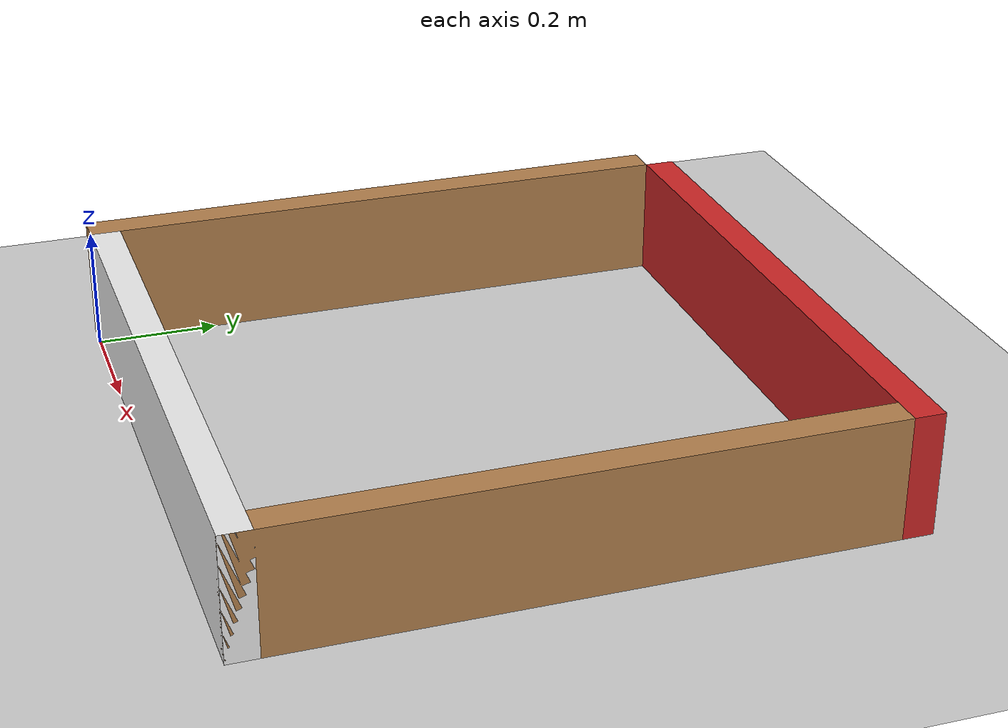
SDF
<sdf version="1.7">
 <world name="world_1_1">
  <include><name>sun</name><uri>model://sun</uri></include>
  <include><name>ground</name><uri>model://ground_plane</uri></include>
  <include><name>labyrinth_1_1</name><uri>model://labyrinth_1_1</uri></include>
  <scene><shadows>0</shadows></scene>
 </world>
</sdf>

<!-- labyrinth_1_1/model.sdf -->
<sdf version="1.7">
    <model name="labyrinth">

			<include><name>0_0h</name><uri>model://wall_White</uri><pose>0 0 0 0 0 0</pose></include>

			<include><name>0_0v</name><uri>model://wall</uri><pose>0 0 0 0 0 1.5707963267948966</pose></include>

			<include><name>0_1h</name><uri>model://wall_Red</uri><pose>0 1 0 0 0 0</pose></include>

			<include><name>1_0v</name><uri>model://wall</uri><pose>1 0 0 0 0 1.5707963267948966</pose></include>

	</model>
</sdf>

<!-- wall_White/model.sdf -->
<sdf version="1.7">
	<model name="wall_White">
		<link name="link">
			<visual name="visual">

				<pose>0.5 0.025 0.1 0 0 0</pose>

				<geometry>
					<box>
						<size>1 0.05 0.2</size>
					</box>
				</geometry>

				<material>
					<script>
						<uri>file://media/materials/scripts/gazebo.material</uri>
						<name>Gazebo/White</name>
					</script>
				</material>
			</visual>
			<collision name="collision">

				<pose>0.5 0.025 0.1 0 0 0</pose>

				<geometry>
					<box>
						<size>1 0.05 0.2</size>
					</box>
				</geometry>

				<laser_retro>3</laser_retro>
			</collision>
		</link>
	</model>
</sdf>

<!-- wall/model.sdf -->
<sdf version="1.7">
	<model name="wall_Wood">
		<link name="link">
			<visual name="visual">

				<pose>0.5 0.025 0.1 0 0 0</pose>

				<geometry>
					<box>
						<size>1 0.05 0.2</size>
					</box>
				</geometry>

				<material>
					<script>
						<uri>file://media/materials/scripts/gazebo.material</uri>
						<name>Gazebo/Wood</name>
					</script>
				</material>
			</visual>
			<collision name="collision">

				<pose>0.5 0.025 0.1 0 0 0</pose>

				<geometry>
					<box>
						<size>1 0.05 0.2</size>
					</box>
				</geometry>

				<laser_retro>1</laser_retro>
			</collision>
		</link>
	</model>
</sdf>

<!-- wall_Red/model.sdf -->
<sdf version="1.7">
	<model name="wall_Red">
		<link name="link">
			<visual name="visual">

				<pose>0.5 0.025 0.1 0 0 0</pose>

				<geometry>
					<box>
						<size>1 0.05 0.2</size>
					</box>
				</geometry>

				<material>
					<script>
						<uri>file://media/materials/scripts/gazebo.material</uri>
						<name>Gazebo/Red</name>
					</script>
				</material>
			</visual>
			<collision name="collision">

				<pose>0.5 0.025 0.1 0 0 0</pose>

				<geometry>
					<box>
						<size>1 0.05 0.2</size>
					</box>
				</geometry>

				<laser_retro>2</laser_retro>
			</collision>
			<sensor name='sensor_contact_wall' type='contact'>
				<contact><collision>collision</collision></contact>
			</sensor>
		</link>
		<plugin filename="libTouchPlugin.so" name='plugin_touch'>
			<sensor>sensor_contact_wall</sensor>
			<target>tb3</target>
			<namespace>finish_wall</namespace>
			<time>0.00001</time>
			<enabled>true</enabled>
		</plugin>
	</model>
</sdf>
